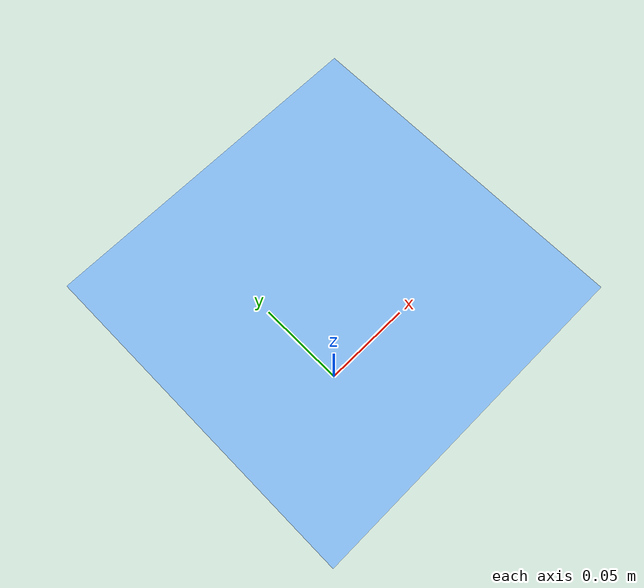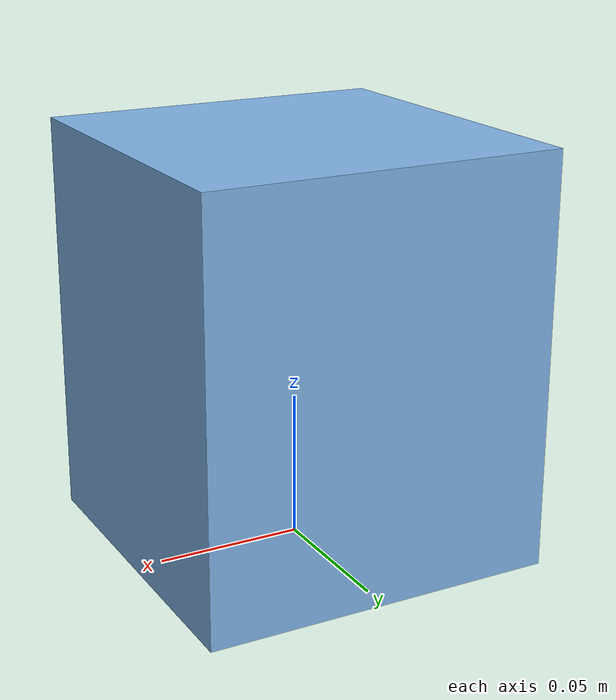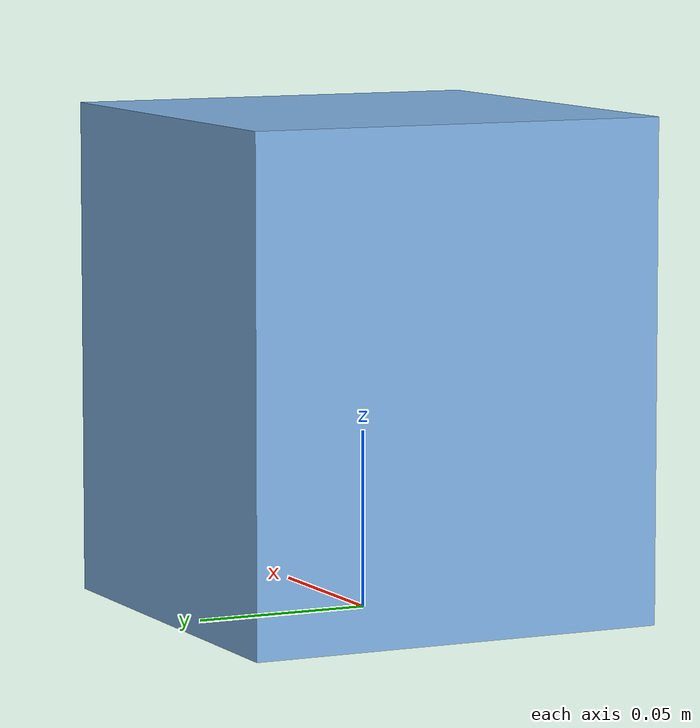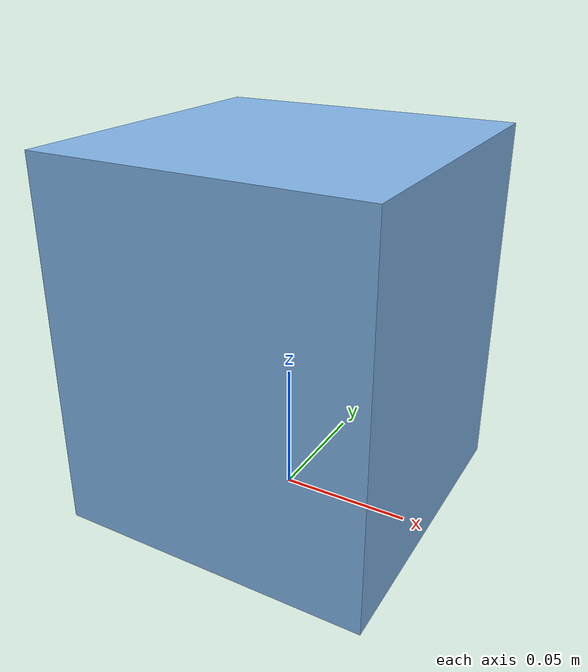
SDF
<sdf version="1.6">
    <model name="tissues">
        <allow_auto_disable>true</allow_auto_disable>
        <link name="link">
            <pose frame=''>0 0 0.07 0 -0 0</pose>
            <kinematic>true</kinematic>
            <inertial>
                <inertia>
                    <ixx>0.0012</ixx>
                    <ixy>0</ixy>
                    <ixz>0</ixz>
                    <iyy>0.0012</iyy>
                    <iyz>0</iyz>
                    <izz>0.0012</izz>
                </inertia>
                <mass>0.5</mass>
            </inertial>
            <visual name="visual">
                <geometry>
                    <box>
                        <size>0.12 0.12 0.14</size>
                    </box>
                </geometry>
                <material>
                <ambient>0.5 0.7 0.9 1.0</ambient>
                <diffuse>0.5 0.7 0.9 1.0</diffuse>
                </material>
            </visual>
            <collision name="collision">
                <geometry>
                    <box>
                        <size>0.12 0.12 0.14</size>
                    </box>
                </geometry>
                <surface>
                    <friction>
                        <ode>
                            <mu>1.0</mu>
                            <mu2>1.0</mu2>
                        </ode>
                    </friction>
                    <contact>
                        <ode>
                            <kp>1e15</kp>
                            <kd>1e12</kd>
                        </ode>
                    </contact>
                </surface>
            </collision>
        </link>
    </model>
</sdf>
